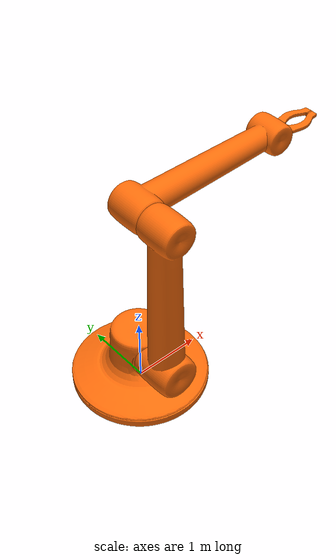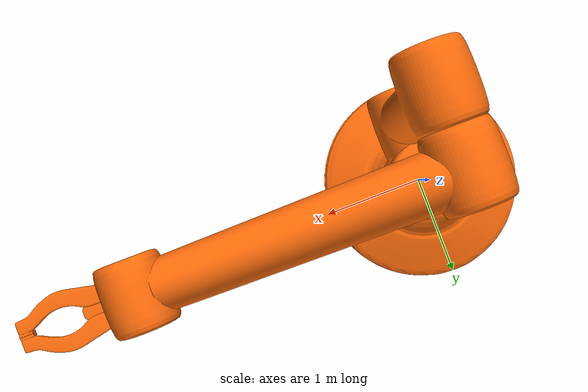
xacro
<?xml version="1.0"?>
<robot xmlns:xacro="http://www.ros.org/wiki/xacro" name="armbot">
    <xacro:property name="PI" value="3.14"/>
    <xacro:property name="effort" value="30"/>
    <xacro:property name="velocity" value="10"/>

    <xacro:macro name="default_inertial" params="mass">
        <inertial>
            <mass value="${mass}"/>
           <inertia ixx="1" ixy="0.0" ixz="0.0" iyy="1" iyz="0.0" izz="1"/>
        </inertial>
    </xacro:macro>

    <xacro:macro name="default_transmission" params="number">
        <transmission name="transmission_${number}">
            <type>
                transmission_interface/SimpleTransmission
            </type>

            <joint name="joint_${number}">
                <hardwareInterface>hardware_interface/PositionJointInterface</hardwareInterface>
            </joint>

            <actuator name="motor_${number}">
                <hardwareInterface>hardware_interface/PositionJointInterface</hardwareInterface>
                <mechanicalReduction>1</mechanicalReduction>
            </actuator>
        </transmission>

    </xacro:macro>

    <link name="world"/>

    <link name="basement_link">
        <xacro:default_inertial mass="0.3"/>
        <visual>
            <origin xyz="0.0 0.0 0.0" rpy="0.0 0.0 0.0"/>
            <geometry>
                <mesh filename="package://armbot_description/mesh/Basement.STL" scale="0.05 0.05 0.05"/>
            </geometry>
            <material name="orange">
                <color rgba="${255/255} ${108/255} ${10/255} 1.0"/>
            </material>
        </visual>
        <collision>
            <origin xyz="0.0 0.0 0.0" rpy="0.0 0.0 0.0"/>
            <geometry>
                <mesh filename="package://armbot_description/mesh/Basement.STL" scale="0.05 0.05 0.05"/>
            </geometry>
        </collision>
    </link>

    <link name="base_link">
        <xacro:default_inertial mass="1.0"/>
        <visual>
            <origin xyz="0.0 0.0 0.23" rpy="0.0 0.0 0.0"/>
            <geometry>
                <mesh filename="package://armbot_description/mesh/Base.STL" scale="0.05 0.05 0.05"/>
            </geometry>
            <material name="orange">
                <color rgba="${255/255} ${108/255} ${10/255} 1.0"/>
            </material>
        </visual>
        <collision>
            <origin xyz="0.0 0.0 0.23" rpy="0.0 0.0 0.0"/>
            <geometry>
                <mesh filename="package://armbot_description/mesh/Base.STL" scale="0.05 0.05 0.05"/>
            </geometry>
        </collision>
    </link>

    <link name="vertical_arm_link">
        <xacro:default_inertial mass="0.4"/>
        <visual>
            <origin xyz="-0.035 -0.905 2.47" rpy="0 -${PI} ${PI}"/>
            <geometry>
                <mesh filename="package://armbot_description/mesh/Vertical_arm.STL" scale="0.05 0.05 0.05"/>
            </geometry>
            <material name="orange">
                <color rgba="${255/255} ${108/255} ${10/255} 1.0"/>
            </material>
        </visual>
        <collision>
            <origin xyz="-0.035 -0.905 2.47" rpy="0 -${PI} ${PI}"/>
            <geometry>
                <mesh filename="package://armbot_description/mesh/Vertical_arm.STL" scale="0.05 0.05 0.05"/>
            </geometry>
        </collision>
    </link>

    <link name="horizontal_arm_link">
        <xacro:default_inertial mass="0.3"/>
        <visual>
            <origin xyz="-0.022 0.2 0.01" rpy="0 -${PI} ${PI}"/>
            <geometry>
                <mesh filename="package://armbot_description/mesh/Horizontal_arm.STL" scale="0.05 0.05 0.05"/>
            </geometry>
            <material name="orange">
                <color rgba="${255/255} ${108/255} ${10/255} 1.0"/>
            </material>
        </visual>
        <collision>
            <origin xyz="-0.022 0.2 0.01" rpy="0 -${PI} ${PI}"/>
            <geometry>
                <mesh filename="package://armbot_description/mesh/Horizontal_arm.STL" scale="0.05 0.05 0.05"/>
            </geometry>
        </collision>
    </link>

    <link name="claw_support">
        <xacro:default_inertial mass="0.05"/>
        <visual>
            <origin xyz="0.32 -0.068 -0.07" rpy="0 0 0"/>
            <geometry>
                <mesh filename="package://armbot_description/mesh/Claw_support.STL" scale="0.05 0.05 0.05"/>
            </geometry>
            <material name="orange">
                <color rgba="${255/255} ${108/255} ${10/255} 1.0"/>
            </material>
        </visual>
        <collision>
            <origin xyz="0.32 -0.068 -0.07" rpy="0 0 0"/>
            <geometry>
                <mesh filename="package://armbot_description/mesh/Claw_support.STL" scale="0.05 0.05 0.05"/>
            </geometry>
        </collision>
    </link>

    <link name="gripper_right">
        <xacro:default_inertial mass="0.01"/>
        <visual>
            <origin xyz="-0.03 0 0.01" rpy="0 0 0"/>
            <geometry>
                <mesh filename="package://armbot_description/mesh/Gripper_right.STL" scale="0.05 0.05 0.05"/>
            </geometry>
            <material name="orange">
                <color rgba="${255/255} ${108/255} ${10/255} 1.0"/>
            </material>
        </visual>
        <collision>
            <origin xyz="-0.03 0 0.01" rpy="0 0 0"/>
            <geometry>
                <mesh filename="package://armbot_description/mesh/Gripper_right.STL" scale="0.05 0.05 0.05"/>
            </geometry>
        </collision>
    </link>

    <link name="gripper_left">
        <xacro:default_inertial mass="0.01"/>
        <visual>
            <origin xyz="-0.03 0 0.01" rpy="0 0 0"/>
            <geometry>
                <mesh filename="package://armbot_description/mesh/Gripper_left.STL" scale="0.05 0.05 0.05"/>
            </geometry>
            <material name="orange">
                <color rgba="${255/255} ${108/255} ${10/255} 1.0"/>
            </material>
        </visual>
        <collision>
            <origin xyz="-0.03 0 0.01" rpy="${PI} 0 0"/>
            <geometry>
                <mesh filename="package://armbot_description/mesh/Gripper_right.STL" scale="0.05 0.05 0.05"/>
            </geometry>
        </collision>
    </link>

    <link name="tool_link"/>

    <joint name="virtual_joint" type="fixed">
        <parent link="world"/>
        <child link="basement_link"/>
        <origin xyz="0 0 0" rpy="0 0 0"/>
    </joint>

    <joint name="joint_1" type="revolute">
        <parent link="basement_link"/>
        <child link="base_link"/>
        <origin xyz="0 0 0.23" rpy="0 0 0"/>
        <axis xyz="0 0 1"/>
        <limit lower="-${PI}" upper="${PI}" effort="${effort}" velocity="${velocity}"/>
    </joint>

    <joint name="joint_2" type="revolute">
        <parent link="base_link"/>
        <child link="vertical_arm_link"/>
        <origin xyz="0 0 0.43" rpy="0 0 0"/>
        <axis xyz="0 1 0"/>
        <limit lower="-${PI/2}" upper="${PI/2}" effort="${effort}" velocity="${velocity}"/>
    </joint>

    <joint name="joint_3" type="revolute">
        <parent link="vertical_arm_link"/>
        <child link="horizontal_arm_link"/>
        <origin xyz="-0.03 0 2.52" rpy="0 0 0"/>
        <axis xyz="0 1 0"/>
        <limit lower="-${PI/2}" upper="${PI/2}" effort="${effort}" velocity="${velocity}"/>
    </joint>

    <joint name="vertical_arm_to_claw_support" type="fixed">
        <parent link="horizontal_arm_link"/>
        <child link="claw_support"/>
        <origin xyz="2.11 0 0" rpy="0 0 0"/>
    </joint>

    <joint name="joint_4" type="revolute">
        <parent link="claw_support"/>
        <child link="gripper_right"/>
        <origin xyz="0.38 -0.16 -0.03" rpy="0 0 0"/>
        <axis xyz="0 0 1"/>
        <limit lower="-${PI/4.7}" upper="0" effort="${effort}" velocity="${velocity}"/>
    </joint>

    <joint name="joint_5" type="revolute">
        <parent link="claw_support"/>
        <child link="gripper_left"/>
        <origin xyz="0.38 0.02 -0.03" rpy="0 0 0"/>
        <axis xyz="0 0 1"/>
        <limit lower="0" upper="${PI/4.7}" effort="${effort}" velocity="${velocity}"/>
        <mimic joint="joint_4" offset="0" multiplier="-1"/>
    </joint>

    <joint name="gripper_right_to_tool" type="fixed">
        <parent link="gripper_right"/>
        <child link="tool_link"/>
        <origin xyz="0 0 0" rpy="0 0 0"/>
    </joint>

    <xacro:default_transmission number="1"/>
    <xacro:default_transmission number="2"/>
    <xacro:default_transmission number="3"/>
    <xacro:default_transmission number="4"/>

    <gazebo>
        <plugin name="gazebo_ros_control" filename="libgazebo_ros_control.so">
            <robotNamespace>/armbot</robotNamespace>
            <robotSimType>gazebo_ros_control/DefaultRobotHWSim</robotSimType>
            <legacyModeNS>true</legacyModeNS>
        </plugin>

        <plugin name="joint_5_mimic_joint_4" filename="libroboticsgroup_gazebo_mimic_joint_plugin.so">
            <joint>joint_4</joint>
            <mimicJoint>joint_5</mimicJoint>
            <multiplier>-1.0</multiplier>
            <offset>0</offset>
            <maxEffort>${effort}</maxEffort>
            <robotnamespace>/armbot</robotnamespace>
        </plugin>
    </gazebo>
</robot>
